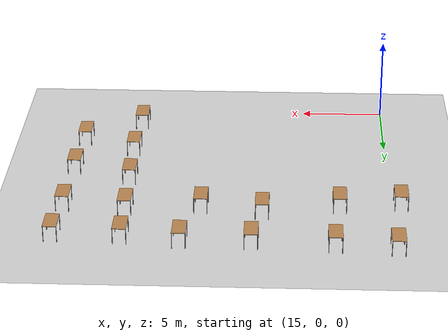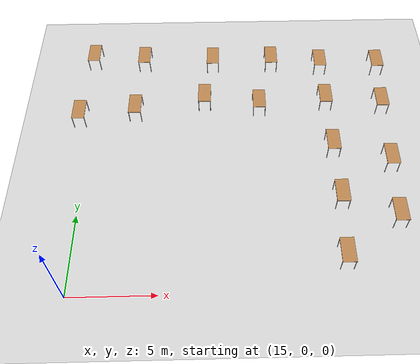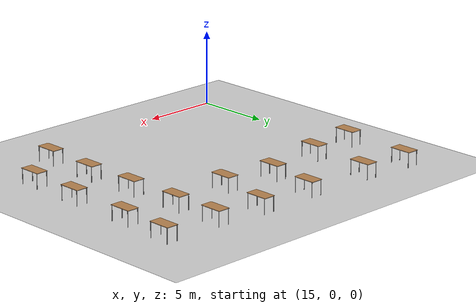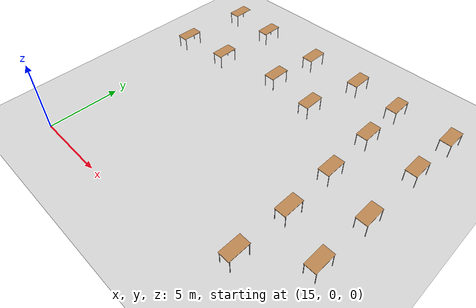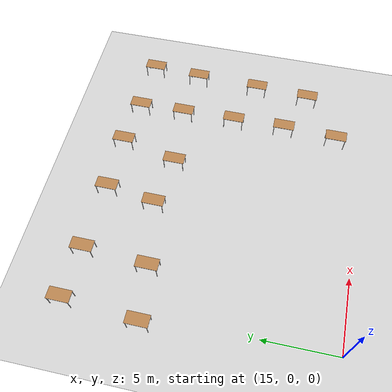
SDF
<sdf version="1.6">
 <world name="default">
  <model name="ground_plane">
   <static>1</static>
   <link name="link">
    <collision name="collision">
     <geometry><plane><normal>0 0 1</normal><size>100 100</size></plane></geometry>
     <surface>
      <contact><collide_bitmask>65535</collide_bitmask></contact>
      <friction><ode><mu>100</mu><mu2>50</mu2></ode></friction>
     </surface>
    </collision>
    <visual name="visual">
     <cast_shadows>0</cast_shadows>
     <geometry><plane><normal>0 0 1</normal><size>100 100</size></plane></geometry>
     <material>
      <script><uri>file://media/materials/scripts/gazebo.material</uri><name>Gazebo/Grey</name></script>
     </material>
    </visual>
   </link>
  </model>
  <model name="table_clone_14">
   <static>1</static>
   <link name="link">
    <collision name="surface">
     <pose>0 0 1 0 -0 0</pose>
     <geometry><box><size>1.5 0.8 0.03</size></box></geometry>
     <surface><friction><ode><mu>0.6</mu><mu2>0.6</mu2></ode></friction></surface>
    </collision>
    <visual name="visual1">
     <pose>0 0 1 0 -0 0</pose>
     <geometry><box><size>1.5 0.8 0.03</size></box></geometry>
     <material>
      <script><uri>file://media/materials/scripts/gazebo.material</uri><name>Gazebo/Wood</name></script>
     </material>
    </visual>
    <collision name="front_left_leg">
     <pose>0.68 0.38 0.5 0 -0 0</pose>
     <geometry><cylinder><radius>0.02</radius><length>1</length></cylinder></geometry>
    </collision>
    <visual name="front_left_leg">
     <pose>0.68 0.38 0.5 0 -0 0</pose>
     <geometry><cylinder><radius>0.02</radius><length>1</length></cylinder></geometry>
     <material>
      <script><uri>file://media/materials/scripts/gazebo.material</uri><name>Gazebo/Grey</name></script>
     </material>
    </visual>
    <collision name="front_right_leg">
     <pose>0.68 -0.38 0.5 0 -0 0</pose>
     <geometry><cylinder><radius>0.02</radius><length>1</length></cylinder></geometry>
    </collision>
    <visual name="front_right_leg">
     <pose>0.68 -0.38 0.5 0 -0 0</pose>
     <geometry><cylinder><radius>0.02</radius><length>1</length></cylinder></geometry>
     <material>
      <script><uri>file://media/materials/scripts/gazebo.material</uri><name>Gazebo/Grey</name></script>
     </material>
    </visual>
    <collision name="back_right_leg">
     <pose>-0.68 -0.38 0.5 0 -0 0</pose>
     <geometry><cylinder><radius>0.02</radius><length>1</length></cylinder></geometry>
    </collision>
    <visual name="back_right_leg">
     <pose>-0.68 -0.38 0.5 0 -0 0</pose>
     <geometry><cylinder><radius>0.02</radius><length>1</length></cylinder></geometry>
     <material>
      <script><uri>file://media/materials/scripts/gazebo.material</uri><name>Gazebo/Grey</name></script>
     </material>
    </visual>
    <collision name="back_left_leg">
     <pose>-0.68 0.38 0.5 0 -0 0</pose>
     <geometry><cylinder><radius>0.02</radius><length>1</length></cylinder></geometry>
    </collision>
    <visual name="back_left_leg">
     <pose>-0.68 0.38 0.5 0 -0 0</pose>
     <geometry><cylinder><radius>0.02</radius><length>1</length></cylinder></geometry>
     <material>
      <script><uri>file://media/materials/scripts/gazebo.material</uri><name>Gazebo/Grey</name></script>
     </material>
    </visual>
   </link>
   <pose>14.849 17.4344 0 0 0 -1.57678</pose>
  </model>
  <model name="table_clone_15">
   <static>1</static>
   <link name="link">
    <collision name="surface">
     <pose>0 0 1 0 -0 0</pose>
     <geometry><box><size>1.5 0.8 0.03</size></box></geometry>
     <surface><friction><ode><mu>0.6</mu><mu2>0.6</mu2></ode></friction></surface>
    </collision>
    <visual name="visual1">
     <pose>0 0 1 0 -0 0</pose>
     <geometry><box><size>1.5 0.8 0.03</size></box></geometry>
     <material>
      <script><uri>file://media/materials/scripts/gazebo.material</uri><name>Gazebo/Wood</name></script>
     </material>
    </visual>
    <collision name="front_left_leg">
     <pose>0.68 0.38 0.5 0 -0 0</pose>
     <geometry><cylinder><radius>0.02</radius><length>1</length></cylinder></geometry>
    </collision>
    <visual name="front_left_leg">
     <pose>0.68 0.38 0.5 0 -0 0</pose>
     <geometry><cylinder><radius>0.02</radius><length>1</length></cylinder></geometry>
     <material>
      <script><uri>file://media/materials/scripts/gazebo.material</uri><name>Gazebo/Grey</name></script>
     </material>
    </visual>
    <collision name="front_right_leg">
     <pose>0.68 -0.38 0.5 0 -0 0</pose>
     <geometry><cylinder><radius>0.02</radius><length>1</length></cylinder></geometry>
    </collision>
    <visual name="front_right_leg">
     <pose>0.68 -0.38 0.5 0 -0 0</pose>
     <geometry><cylinder><radius>0.02</radius><length>1</length></cylinder></geometry>
     <material>
      <script><uri>file://media/materials/scripts/gazebo.material</uri><name>Gazebo/Grey</name></script>
     </material>
    </visual>
    <collision name="back_right_leg">
     <pose>-0.68 -0.38 0.5 0 -0 0</pose>
     <geometry><cylinder><radius>0.02</radius><length>1</length></cylinder></geometry>
    </collision>
    <visual name="back_right_leg">
     <pose>-0.68 -0.38 0.5 0 -0 0</pose>
     <geometry><cylinder><radius>0.02</radius><length>1</length></cylinder></geometry>
     <material>
      <script><uri>file://media/materials/scripts/gazebo.material</uri><name>Gazebo/Grey</name></script>
     </material>
    </visual>
    <collision name="back_left_leg">
     <pose>-0.68 0.38 0.5 0 -0 0</pose>
     <geometry><cylinder><radius>0.02</radius><length>1</length></cylinder></geometry>
    </collision>
    <visual name="back_left_leg">
     <pose>-0.68 0.38 0.5 0 -0 0</pose>
     <geometry><cylinder><radius>0.02</radius><length>1</length></cylinder></geometry>
     <material>
      <script><uri>file://media/materials/scripts/gazebo.material</uri><name>Gazebo/Grey</name></script>
     </material>
    </visual>
   </link>
   <pose>14.4026 12.343 0 0 0 -1.57678</pose>
  </model>
  <model name="table_clone_16">
   <static>1</static>
   <link name="link">
    <collision name="surface">
     <pose>0 0 1 0 -0 0</pose>
     <geometry><box><size>1.5 0.8 0.03</size></box></geometry>
     <surface><friction><ode><mu>0.6</mu><mu2>0.6</mu2></ode></friction></surface>
    </collision>
    <visual name="visual1">
     <pose>0 0 1 0 -0 0</pose>
     <geometry><box><size>1.5 0.8 0.03</size></box></geometry>
     <material>
      <script><uri>file://media/materials/scripts/gazebo.material</uri><name>Gazebo/Wood</name></script>
     </material>
    </visual>
    <collision name="front_left_leg">
     <pose>0.68 0.38 0.5 0 -0 0</pose>
     <geometry><cylinder><radius>0.02</radius><length>1</length></cylinder></geometry>
    </collision>
    <visual name="front_left_leg">
     <pose>0.68 0.38 0.5 0 -0 0</pose>
     <geometry><cylinder><radius>0.02</radius><length>1</length></cylinder></geometry>
     <material>
      <script><uri>file://media/materials/scripts/gazebo.material</uri><name>Gazebo/Grey</name></script>
     </material>
    </visual>
    <collision name="front_right_leg">
     <pose>0.68 -0.38 0.5 0 -0 0</pose>
     <geometry><cylinder><radius>0.02</radius><length>1</length></cylinder></geometry>
    </collision>
    <visual name="front_right_leg">
     <pose>0.68 -0.38 0.5 0 -0 0</pose>
     <geometry><cylinder><radius>0.02</radius><length>1</length></cylinder></geometry>
     <material>
      <script><uri>file://media/materials/scripts/gazebo.material</uri><name>Gazebo/Grey</name></script>
     </material>
    </visual>
    <collision name="back_right_leg">
     <pose>-0.68 -0.38 0.5 0 -0 0</pose>
     <geometry><cylinder><radius>0.02</radius><length>1</length></cylinder></geometry>
    </collision>
    <visual name="back_right_leg">
     <pose>-0.68 -0.38 0.5 0 -0 0</pose>
     <geometry><cylinder><radius>0.02</radius><length>1</length></cylinder></geometry>
     <material>
      <script><uri>file://media/materials/scripts/gazebo.material</uri><name>Gazebo/Grey</name></script>
     </material>
    </visual>
    <collision name="back_left_leg">
     <pose>-0.68 0.38 0.5 0 -0 0</pose>
     <geometry><cylinder><radius>0.02</radius><length>1</length></cylinder></geometry>
    </collision>
    <visual name="back_left_leg">
     <pose>-0.68 0.38 0.5 0 -0 0</pose>
     <geometry><cylinder><radius>0.02</radius><length>1</length></cylinder></geometry>
     <material>
      <script><uri>file://media/materials/scripts/gazebo.material</uri><name>Gazebo/Grey</name></script>
     </material>
    </visual>
   </link>
   <pose>18.3129 17.1744 0 0 0 -1.57678</pose>
  </model>
  <model name="table_clone_17">
   <static>1</static>
   <link name="link">
    <collision name="surface">
     <pose>0 0 1 0 -0 0</pose>
     <geometry><box><size>1.5 0.8 0.03</size></box></geometry>
     <surface><friction><ode><mu>0.6</mu><mu2>0.6</mu2></ode></friction></surface>
    </collision>
    <visual name="visual1">
     <pose>0 0 1 0 -0 0</pose>
     <geometry><box><size>1.5 0.8 0.03</size></box></geometry>
     <material>
      <script><uri>file://media/materials/scripts/gazebo.material</uri><name>Gazebo/Wood</name></script>
     </material>
    </visual>
    <collision name="front_left_leg">
     <pose>0.68 0.38 0.5 0 -0 0</pose>
     <geometry><cylinder><radius>0.02</radius><length>1</length></cylinder></geometry>
    </collision>
    <visual name="front_left_leg">
     <pose>0.68 0.38 0.5 0 -0 0</pose>
     <geometry><cylinder><radius>0.02</radius><length>1</length></cylinder></geometry>
     <material>
      <script><uri>file://media/materials/scripts/gazebo.material</uri><name>Gazebo/Grey</name></script>
     </material>
    </visual>
    <collision name="front_right_leg">
     <pose>0.68 -0.38 0.5 0 -0 0</pose>
     <geometry><cylinder><radius>0.02</radius><length>1</length></cylinder></geometry>
    </collision>
    <visual name="front_right_leg">
     <pose>0.68 -0.38 0.5 0 -0 0</pose>
     <geometry><cylinder><radius>0.02</radius><length>1</length></cylinder></geometry>
     <material>
      <script><uri>file://media/materials/scripts/gazebo.material</uri><name>Gazebo/Grey</name></script>
     </material>
    </visual>
    <collision name="back_right_leg">
     <pose>-0.68 -0.38 0.5 0 -0 0</pose>
     <geometry><cylinder><radius>0.02</radius><length>1</length></cylinder></geometry>
    </collision>
    <visual name="back_right_leg">
     <pose>-0.68 -0.38 0.5 0 -0 0</pose>
     <geometry><cylinder><radius>0.02</radius><length>1</length></cylinder></geometry>
     <material>
      <script><uri>file://media/materials/scripts/gazebo.material</uri><name>Gazebo/Grey</name></script>
     </material>
    </visual>
    <collision name="back_left_leg">
     <pose>-0.68 0.38 0.5 0 -0 0</pose>
     <geometry><cylinder><radius>0.02</radius><length>1</length></cylinder></geometry>
    </collision>
    <visual name="back_left_leg">
     <pose>-0.68 0.38 0.5 0 -0 0</pose>
     <geometry><cylinder><radius>0.02</radius><length>1</length></cylinder></geometry>
     <material>
      <script><uri>file://media/materials/scripts/gazebo.material</uri><name>Gazebo/Grey</name></script>
     </material>
    </visual>
   </link>
   <pose>17.9638 12.7336 0 0 0 -1.57678</pose>
  </model>
  <model name="table_clone_7_clone">
   <static>1</static>
   <link name="link">
    <collision name="surface">
     <pose>0 0 1 0 -0 0</pose>
     <geometry><box><size>1.5 0.8 0.03</size></box></geometry>
     <surface><friction><ode><mu>0.6</mu><mu2>0.6</mu2></ode></friction></surface>
    </collision>
    <visual name="visual1">
     <pose>0 0 1 0 -0 0</pose>
     <geometry><box><size>1.5 0.8 0.03</size></box></geometry>
     <material>
      <script><uri>file://media/materials/scripts/gazebo.material</uri><name>Gazebo/Wood</name></script>
     </material>
    </visual>
    <collision name="front_left_leg">
     <pose>0.68 0.38 0.5 0 -0 0</pose>
     <geometry><cylinder><radius>0.02</radius><length>1</length></cylinder></geometry>
    </collision>
    <visual name="front_left_leg">
     <pose>0.68 0.38 0.5 0 -0 0</pose>
     <geometry><cylinder><radius>0.02</radius><length>1</length></cylinder></geometry>
     <material>
      <script><uri>file://media/materials/scripts/gazebo.material</uri><name>Gazebo/Grey</name></script>
     </material>
    </visual>
    <collision name="front_right_leg">
     <pose>0.68 -0.38 0.5 0 -0 0</pose>
     <geometry><cylinder><radius>0.02</radius><length>1</length></cylinder></geometry>
    </collision>
    <visual name="front_right_leg">
     <pose>0.68 -0.38 0.5 0 -0 0</pose>
     <geometry><cylinder><radius>0.02</radius><length>1</length></cylinder></geometry>
     <material>
      <script><uri>file://media/materials/scripts/gazebo.material</uri><name>Gazebo/Grey</name></script>
     </material>
    </visual>
    <collision name="back_right_leg">
     <pose>-0.68 -0.38 0.5 0 -0 0</pose>
     <geometry><cylinder><radius>0.02</radius><length>1</length></cylinder></geometry>
    </collision>
    <visual name="back_right_leg">
     <pose>-0.68 -0.38 0.5 0 -0 0</pose>
     <geometry><cylinder><radius>0.02</radius><length>1</length></cylinder></geometry>
     <material>
      <script><uri>file://media/materials/scripts/gazebo.material</uri><name>Gazebo/Grey</name></script>
     </material>
    </visual>
    <collision name="back_left_leg">
     <pose>-0.68 0.38 0.5 0 -0 0</pose>
     <geometry><cylinder><radius>0.02</radius><length>1</length></cylinder></geometry>
    </collision>
    <visual name="back_left_leg">
     <pose>-0.68 0.38 0.5 0 -0 0</pose>
     <geometry><cylinder><radius>0.02</radius><length>1</length></cylinder></geometry>
     <material>
      <script><uri>file://media/materials/scripts/gazebo.material</uri><name>Gazebo/Grey</name></script>
     </material>
    </visual>
   </link>
   <pose>34.2144 16.5177 0 0 0 -1.57678</pose>
  </model>
  <model name="table_clone_7_clone_0">
   <static>1</static>
   <link name="link">
    <collision name="surface">
     <pose>0 0 1 0 -0 0</pose>
     <geometry><box><size>1.5 0.8 0.03</size></box></geometry>
     <surface><friction><ode><mu>0.6</mu><mu2>0.6</mu2></ode></friction></surface>
    </collision>
    <visual name="visual1">
     <pose>0 0 1 0 -0 0</pose>
     <geometry><box><size>1.5 0.8 0.03</size></box></geometry>
     <material>
      <script><uri>file://media/materials/scripts/gazebo.material</uri><name>Gazebo/Wood</name></script>
     </material>
    </visual>
    <collision name="front_left_leg">
     <pose>0.68 0.38 0.5 0 -0 0</pose>
     <geometry><cylinder><radius>0.02</radius><length>1</length></cylinder></geometry>
    </collision>
    <visual name="front_left_leg">
     <pose>0.68 0.38 0.5 0 -0 0</pose>
     <geometry><cylinder><radius>0.02</radius><length>1</length></cylinder></geometry>
     <material>
      <script><uri>file://media/materials/scripts/gazebo.material</uri><name>Gazebo/Grey</name></script>
     </material>
    </visual>
    <collision name="front_right_leg">
     <pose>0.68 -0.38 0.5 0 -0 0</pose>
     <geometry><cylinder><radius>0.02</radius><length>1</length></cylinder></geometry>
    </collision>
    <visual name="front_right_leg">
     <pose>0.68 -0.38 0.5 0 -0 0</pose>
     <geometry><cylinder><radius>0.02</radius><length>1</length></cylinder></geometry>
     <material>
      <script><uri>file://media/materials/scripts/gazebo.material</uri><name>Gazebo/Grey</name></script>
     </material>
    </visual>
    <collision name="back_right_leg">
     <pose>-0.68 -0.38 0.5 0 -0 0</pose>
     <geometry><cylinder><radius>0.02</radius><length>1</length></cylinder></geometry>
    </collision>
    <visual name="back_right_leg">
     <pose>-0.68 -0.38 0.5 0 -0 0</pose>
     <geometry><cylinder><radius>0.02</radius><length>1</length></cylinder></geometry>
     <material>
      <script><uri>file://media/materials/scripts/gazebo.material</uri><name>Gazebo/Grey</name></script>
     </material>
    </visual>
    <collision name="back_left_leg">
     <pose>-0.68 0.38 0.5 0 -0 0</pose>
     <geometry><cylinder><radius>0.02</radius><length>1</length></cylinder></geometry>
    </collision>
    <visual name="back_left_leg">
     <pose>-0.68 0.38 0.5 0 -0 0</pose>
     <geometry><cylinder><radius>0.02</radius><length>1</length></cylinder></geometry>
     <material>
      <script><uri>file://media/materials/scripts/gazebo.material</uri><name>Gazebo/Grey</name></script>
     </material>
    </visual>
   </link>
   <pose>34 13 0 0 0 -1.57678</pose>
  </model>
  <model name="table_clone_7_clone_1">
   <static>1</static>
   <link name="link">
    <collision name="surface">
     <pose>0 0 1 0 -0 0</pose>
     <geometry><box><size>1.5 0.8 0.03</size></box></geometry>
     <surface><friction><ode><mu>0.6</mu><mu2>0.6</mu2></ode></friction></surface>
    </collision>
    <visual name="visual1">
     <pose>0 0 1 0 -0 0</pose>
     <geometry><box><size>1.5 0.8 0.03</size></box></geometry>
     <material>
      <script><uri>file://media/materials/scripts/gazebo.material</uri><name>Gazebo/Wood</name></script>
     </material>
    </visual>
    <collision name="front_left_leg">
     <pose>0.68 0.38 0.5 0 -0 0</pose>
     <geometry><cylinder><radius>0.02</radius><length>1</length></cylinder></geometry>
    </collision>
    <visual name="front_left_leg">
     <pose>0.68 0.38 0.5 0 -0 0</pose>
     <geometry><cylinder><radius>0.02</radius><length>1</length></cylinder></geometry>
     <material>
      <script><uri>file://media/materials/scripts/gazebo.material</uri><name>Gazebo/Grey</name></script>
     </material>
    </visual>
    <collision name="front_right_leg">
     <pose>0.68 -0.38 0.5 0 -0 0</pose>
     <geometry><cylinder><radius>0.02</radius><length>1</length></cylinder></geometry>
    </collision>
    <visual name="front_right_leg">
     <pose>0.68 -0.38 0.5 0 -0 0</pose>
     <geometry><cylinder><radius>0.02</radius><length>1</length></cylinder></geometry>
     <material>
      <script><uri>file://media/materials/scripts/gazebo.material</uri><name>Gazebo/Grey</name></script>
     </material>
    </visual>
    <collision name="back_right_leg">
     <pose>-0.68 -0.38 0.5 0 -0 0</pose>
     <geometry><cylinder><radius>0.02</radius><length>1</length></cylinder></geometry>
    </collision>
    <visual name="back_right_leg">
     <pose>-0.68 -0.38 0.5 0 -0 0</pose>
     <geometry><cylinder><radius>0.02</radius><length>1</length></cylinder></geometry>
     <material>
      <script><uri>file://media/materials/scripts/gazebo.material</uri><name>Gazebo/Grey</name></script>
     </material>
    </visual>
    <collision name="back_left_leg">
     <pose>-0.68 0.38 0.5 0 -0 0</pose>
     <geometry><cylinder><radius>0.02</radius><length>1</length></cylinder></geometry>
    </collision>
    <visual name="back_left_leg">
     <pose>-0.68 0.38 0.5 0 -0 0</pose>
     <geometry><cylinder><radius>0.02</radius><length>1</length></cylinder></geometry>
     <material>
      <script><uri>file://media/materials/scripts/gazebo.material</uri><name>Gazebo/Grey</name></script>
     </material>
    </visual>
   </link>
   <pose>33.8681 8.3888 0 0 0 -1.57678</pose>
  </model>
  <model name="table_clone_7_clone_2">
   <static>1</static>
   <link name="link">
    <collision name="surface">
     <pose>0 0 1 0 -0 0</pose>
     <geometry><box><size>1.5 0.8 0.03</size></box></geometry>
     <surface><friction><ode><mu>0.6</mu><mu2>0.6</mu2></ode></friction></surface>
    </collision>
    <visual name="visual1">
     <pose>0 0 1 0 -0 0</pose>
     <geometry><box><size>1.5 0.8 0.03</size></box></geometry>
     <material>
      <script><uri>file://media/materials/scripts/gazebo.material</uri><name>Gazebo/Wood</name></script>
     </material>
    </visual>
    <collision name="front_left_leg">
     <pose>0.68 0.38 0.5 0 -0 0</pose>
     <geometry><cylinder><radius>0.02</radius><length>1</length></cylinder></geometry>
    </collision>
    <visual name="front_left_leg">
     <pose>0.68 0.38 0.5 0 -0 0</pose>
     <geometry><cylinder><radius>0.02</radius><length>1</length></cylinder></geometry>
     <material>
      <script><uri>file://media/materials/scripts/gazebo.material</uri><name>Gazebo/Grey</name></script>
     </material>
    </visual>
    <collision name="front_right_leg">
     <pose>0.68 -0.38 0.5 0 -0 0</pose>
     <geometry><cylinder><radius>0.02</radius><length>1</length></cylinder></geometry>
    </collision>
    <visual name="front_right_leg">
     <pose>0.68 -0.38 0.5 0 -0 0</pose>
     <geometry><cylinder><radius>0.02</radius><length>1</length></cylinder></geometry>
     <material>
      <script><uri>file://media/materials/scripts/gazebo.material</uri><name>Gazebo/Grey</name></script>
     </material>
    </visual>
    <collision name="back_right_leg">
     <pose>-0.68 -0.38 0.5 0 -0 0</pose>
     <geometry><cylinder><radius>0.02</radius><length>1</length></cylinder></geometry>
    </collision>
    <visual name="back_right_leg">
     <pose>-0.68 -0.38 0.5 0 -0 0</pose>
     <geometry><cylinder><radius>0.02</radius><length>1</length></cylinder></geometry>
     <material>
      <script><uri>file://media/materials/scripts/gazebo.material</uri><name>Gazebo/Grey</name></script>
     </material>
    </visual>
    <collision name="back_left_leg">
     <pose>-0.68 0.38 0.5 0 -0 0</pose>
     <geometry><cylinder><radius>0.02</radius><length>1</length></cylinder></geometry>
    </collision>
    <visual name="back_left_leg">
     <pose>-0.68 0.38 0.5 0 -0 0</pose>
     <geometry><cylinder><radius>0.02</radius><length>1</length></cylinder></geometry>
     <material>
      <script><uri>file://media/materials/scripts/gazebo.material</uri><name>Gazebo/Grey</name></script>
     </material>
    </visual>
   </link>
   <pose>33.6634 4.48857 0 0 0 -1.57678</pose>
  </model>
  <model name="table_clone_7_clone_7">
   <static>1</static>
   <link name="link">
    <collision name="surface">
     <pose>0 0 1 0 -0 0</pose>
     <geometry><box><size>1.5 0.8 0.03</size></box></geometry>
     <surface><friction><ode><mu>0.6</mu><mu2>0.6</mu2></ode></friction></surface>
    </collision>
    <visual name="visual1">
     <pose>0 0 1 0 -0 0</pose>
     <geometry><box><size>1.5 0.8 0.03</size></box></geometry>
     <material>
      <script><uri>file://media/materials/scripts/gazebo.material</uri><name>Gazebo/Wood</name></script>
     </material>
    </visual>
    <collision name="front_left_leg">
     <pose>0.68 0.38 0.5 0 -0 0</pose>
     <geometry><cylinder><radius>0.02</radius><length>1</length></cylinder></geometry>
    </collision>
    <visual name="front_left_leg">
     <pose>0.68 0.38 0.5 0 -0 0</pose>
     <geometry><cylinder><radius>0.02</radius><length>1</length></cylinder></geometry>
     <material>
      <script><uri>file://media/materials/scripts/gazebo.material</uri><name>Gazebo/Grey</name></script>
     </material>
    </visual>
    <collision name="front_right_leg">
     <pose>0.68 -0.38 0.5 0 -0 0</pose>
     <geometry><cylinder><radius>0.02</radius><length>1</length></cylinder></geometry>
    </collision>
    <visual name="front_right_leg">
     <pose>0.68 -0.38 0.5 0 -0 0</pose>
     <geometry><cylinder><radius>0.02</radius><length>1</length></cylinder></geometry>
     <material>
      <script><uri>file://media/materials/scripts/gazebo.material</uri><name>Gazebo/Grey</name></script>
     </material>
    </visual>
    <collision name="back_right_leg">
     <pose>-0.68 -0.38 0.5 0 -0 0</pose>
     <geometry><cylinder><radius>0.02</radius><length>1</length></cylinder></geometry>
    </collision>
    <visual name="back_right_leg">
     <pose>-0.68 -0.38 0.5 0 -0 0</pose>
     <geometry><cylinder><radius>0.02</radius><length>1</length></cylinder></geometry>
     <material>
      <script><uri>file://media/materials/scripts/gazebo.material</uri><name>Gazebo/Grey</name></script>
     </material>
    </visual>
    <collision name="back_left_leg">
     <pose>-0.68 0.38 0.5 0 -0 0</pose>
     <geometry><cylinder><radius>0.02</radius><length>1</length></cylinder></geometry>
    </collision>
    <visual name="back_left_leg">
     <pose>-0.68 0.38 0.5 0 -0 0</pose>
     <geometry><cylinder><radius>0.02</radius><length>1</length></cylinder></geometry>
     <material>
      <script><uri>file://media/materials/scripts/gazebo.material</uri><name>Gazebo/Grey</name></script>
     </material>
    </visual>
   </link>
   <pose>30.3277 16.6443 0 0 0 -1.57678</pose>
  </model>
  <model name="table_clone_7_clone_8">
   <static>1</static>
   <link name="link">
    <collision name="surface">
     <pose>0 0 1 0 -0 0</pose>
     <geometry><box><size>1.5 0.8 0.03</size></box></geometry>
     <surface><friction><ode><mu>0.6</mu><mu2>0.6</mu2></ode></friction></surface>
    </collision>
    <visual name="visual1">
     <pose>0 0 1 0 -0 0</pose>
     <geometry><box><size>1.5 0.8 0.03</size></box></geometry>
     <material>
      <script><uri>file://media/materials/scripts/gazebo.material</uri><name>Gazebo/Wood</name></script>
     </material>
    </visual>
    <collision name="front_left_leg">
     <pose>0.68 0.38 0.5 0 -0 0</pose>
     <geometry><cylinder><radius>0.02</radius><length>1</length></cylinder></geometry>
    </collision>
    <visual name="front_left_leg">
     <pose>0.68 0.38 0.5 0 -0 0</pose>
     <geometry><cylinder><radius>0.02</radius><length>1</length></cylinder></geometry>
     <material>
      <script><uri>file://media/materials/scripts/gazebo.material</uri><name>Gazebo/Grey</name></script>
     </material>
    </visual>
    <collision name="front_right_leg">
     <pose>0.68 -0.38 0.5 0 -0 0</pose>
     <geometry><cylinder><radius>0.02</radius><length>1</length></cylinder></geometry>
    </collision>
    <visual name="front_right_leg">
     <pose>0.68 -0.38 0.5 0 -0 0</pose>
     <geometry><cylinder><radius>0.02</radius><length>1</length></cylinder></geometry>
     <material>
      <script><uri>file://media/materials/scripts/gazebo.material</uri><name>Gazebo/Grey</name></script>
     </material>
    </visual>
    <collision name="back_right_leg">
     <pose>-0.68 -0.38 0.5 0 -0 0</pose>
     <geometry><cylinder><radius>0.02</radius><length>1</length></cylinder></geometry>
    </collision>
    <visual name="back_right_leg">
     <pose>-0.68 -0.38 0.5 0 -0 0</pose>
     <geometry><cylinder><radius>0.02</radius><length>1</length></cylinder></geometry>
     <material>
      <script><uri>file://media/materials/scripts/gazebo.material</uri><name>Gazebo/Grey</name></script>
     </material>
    </visual>
    <collision name="back_left_leg">
     <pose>-0.68 0.38 0.5 0 -0 0</pose>
     <geometry><cylinder><radius>0.02</radius><length>1</length></cylinder></geometry>
    </collision>
    <visual name="back_left_leg">
     <pose>-0.68 0.38 0.5 0 -0 0</pose>
     <geometry><cylinder><radius>0.02</radius><length>1</length></cylinder></geometry>
     <material>
      <script><uri>file://media/materials/scripts/gazebo.material</uri><name>Gazebo/Grey</name></script>
     </material>
    </visual>
   </link>
   <pose>30.3629 13.3744 0 0 0 -1.57678</pose>
  </model>
  <model name="table_clone_7_clone_9">
   <static>1</static>
   <link name="link">
    <collision name="surface">
     <pose>0 0 1 0 -0 0</pose>
     <geometry><box><size>1.5 0.8 0.03</size></box></geometry>
     <surface><friction><ode><mu>0.6</mu><mu2>0.6</mu2></ode></friction></surface>
    </collision>
    <visual name="visual1">
     <pose>0 0 1 0 -0 0</pose>
     <geometry><box><size>1.5 0.8 0.03</size></box></geometry>
     <material>
      <script><uri>file://media/materials/scripts/gazebo.material</uri><name>Gazebo/Wood</name></script>
     </material>
    </visual>
    <collision name="front_left_leg">
     <pose>0.68 0.38 0.5 0 -0 0</pose>
     <geometry><cylinder><radius>0.02</radius><length>1</length></cylinder></geometry>
    </collision>
    <visual name="front_left_leg">
     <pose>0.68 0.38 0.5 0 -0 0</pose>
     <geometry><cylinder><radius>0.02</radius><length>1</length></cylinder></geometry>
     <material>
      <script><uri>file://media/materials/scripts/gazebo.material</uri><name>Gazebo/Grey</name></script>
     </material>
    </visual>
    <collision name="front_right_leg">
     <pose>0.68 -0.38 0.5 0 -0 0</pose>
     <geometry><cylinder><radius>0.02</radius><length>1</length></cylinder></geometry>
    </collision>
    <visual name="front_right_leg">
     <pose>0.68 -0.38 0.5 0 -0 0</pose>
     <geometry><cylinder><radius>0.02</radius><length>1</length></cylinder></geometry>
     <material>
      <script><uri>file://media/materials/scripts/gazebo.material</uri><name>Gazebo/Grey</name></script>
     </material>
    </visual>
    <collision name="back_right_leg">
     <pose>-0.68 -0.38 0.5 0 -0 0</pose>
     <geometry><cylinder><radius>0.02</radius><length>1</length></cylinder></geometry>
    </collision>
    <visual name="back_right_leg">
     <pose>-0.68 -0.38 0.5 0 -0 0</pose>
     <geometry><cylinder><radius>0.02</radius><length>1</length></cylinder></geometry>
     <material>
      <script><uri>file://media/materials/scripts/gazebo.material</uri><name>Gazebo/Grey</name></script>
     </material>
    </visual>
    <collision name="back_left_leg">
     <pose>-0.68 0.38 0.5 0 -0 0</pose>
     <geometry><cylinder><radius>0.02</radius><length>1</length></cylinder></geometry>
    </collision>
    <visual name="back_left_leg">
     <pose>-0.68 0.38 0.5 0 -0 0</pose>
     <geometry><cylinder><radius>0.02</radius><length>1</length></cylinder></geometry>
     <material>
      <script><uri>file://media/materials/scripts/gazebo.material</uri><name>Gazebo/Grey</name></script>
     </material>
    </visual>
   </link>
   <pose>30.4405 9.56138 0 0 0 -1.57678</pose>
  </model>
  <model name="table_clone_7_clone_10">
   <static>1</static>
   <link name="link">
    <collision name="surface">
     <pose>0 0 1 0 -0 0</pose>
     <geometry><box><size>1.5 0.8 0.03</size></box></geometry>
     <surface><friction><ode><mu>0.6</mu><mu2>0.6</mu2></ode></friction></surface>
    </collision>
    <visual name="visual1">
     <pose>0 0 1 0 -0 0</pose>
     <geometry><box><size>1.5 0.8 0.03</size></box></geometry>
     <material>
      <script><uri>file://media/materials/scripts/gazebo.material</uri><name>Gazebo/Wood</name></script>
     </material>
    </visual>
    <collision name="front_left_leg">
     <pose>0.68 0.38 0.5 0 -0 0</pose>
     <geometry><cylinder><radius>0.02</radius><length>1</length></cylinder></geometry>
    </collision>
    <visual name="front_left_leg">
     <pose>0.68 0.38 0.5 0 -0 0</pose>
     <geometry><cylinder><radius>0.02</radius><length>1</length></cylinder></geometry>
     <material>
      <script><uri>file://media/materials/scripts/gazebo.material</uri><name>Gazebo/Grey</name></script>
     </material>
    </visual>
    <collision name="front_right_leg">
     <pose>0.68 -0.38 0.5 0 -0 0</pose>
     <geometry><cylinder><radius>0.02</radius><length>1</length></cylinder></geometry>
    </collision>
    <visual name="front_right_leg">
     <pose>0.68 -0.38 0.5 0 -0 0</pose>
     <geometry><cylinder><radius>0.02</radius><length>1</length></cylinder></geometry>
     <material>
      <script><uri>file://media/materials/scripts/gazebo.material</uri><name>Gazebo/Grey</name></script>
     </material>
    </visual>
    <collision name="back_right_leg">
     <pose>-0.68 -0.38 0.5 0 -0 0</pose>
     <geometry><cylinder><radius>0.02</radius><length>1</length></cylinder></geometry>
    </collision>
    <visual name="back_right_leg">
     <pose>-0.68 -0.38 0.5 0 -0 0</pose>
     <geometry><cylinder><radius>0.02</radius><length>1</length></cylinder></geometry>
     <material>
      <script><uri>file://media/materials/scripts/gazebo.material</uri><name>Gazebo/Grey</name></script>
     </material>
    </visual>
    <collision name="back_left_leg">
     <pose>-0.68 0.38 0.5 0 -0 0</pose>
     <geometry><cylinder><radius>0.02</radius><length>1</length></cylinder></geometry>
    </collision>
    <visual name="back_left_leg">
     <pose>-0.68 0.38 0.5 0 -0 0</pose>
     <geometry><cylinder><radius>0.02</radius><length>1</length></cylinder></geometry>
     <material>
      <script><uri>file://media/materials/scripts/gazebo.material</uri><name>Gazebo/Grey</name></script>
     </material>
    </visual>
   </link>
   <pose>30.5129 5.82378 0 0 0 -1.57678</pose>
  </model>
  <model name="table_clone_7_clone_11">
   <static>1</static>
   <link name="link">
    <collision name="surface">
     <pose>0 0 1 0 -0 0</pose>
     <geometry><box><size>1.5 0.8 0.03</size></box></geometry>
     <surface><friction><ode><mu>0.6</mu><mu2>0.6</mu2></ode></friction></surface>
    </collision>
    <visual name="visual1">
     <pose>0 0 1 0 -0 0</pose>
     <geometry><box><size>1.5 0.8 0.03</size></box></geometry>
     <material>
      <script><uri>file://media/materials/scripts/gazebo.material</uri><name>Gazebo/Wood</name></script>
     </material>
    </visual>
    <collision name="front_left_leg">
     <pose>0.68 0.38 0.5 0 -0 0</pose>
     <geometry><cylinder><radius>0.02</radius><length>1</length></cylinder></geometry>
    </collision>
    <visual name="front_left_leg">
     <pose>0.68 0.38 0.5 0 -0 0</pose>
     <geometry><cylinder><radius>0.02</radius><length>1</length></cylinder></geometry>
     <material>
      <script><uri>file://media/materials/scripts/gazebo.material</uri><name>Gazebo/Grey</name></script>
     </material>
    </visual>
    <collision name="front_right_leg">
     <pose>0.68 -0.38 0.5 0 -0 0</pose>
     <geometry><cylinder><radius>0.02</radius><length>1</length></cylinder></geometry>
    </collision>
    <visual name="front_right_leg">
     <pose>0.68 -0.38 0.5 0 -0 0</pose>
     <geometry><cylinder><radius>0.02</radius><length>1</length></cylinder></geometry>
     <material>
      <script><uri>file://media/materials/scripts/gazebo.material</uri><name>Gazebo/Grey</name></script>
     </material>
    </visual>
    <collision name="back_right_leg">
     <pose>-0.68 -0.38 0.5 0 -0 0</pose>
     <geometry><cylinder><radius>0.02</radius><length>1</length></cylinder></geometry>
    </collision>
    <visual name="back_right_leg">
     <pose>-0.68 -0.38 0.5 0 -0 0</pose>
     <geometry><cylinder><radius>0.02</radius><length>1</length></cylinder></geometry>
     <material>
      <script><uri>file://media/materials/scripts/gazebo.material</uri><name>Gazebo/Grey</name></script>
     </material>
    </visual>
    <collision name="back_left_leg">
     <pose>-0.68 0.38 0.5 0 -0 0</pose>
     <geometry><cylinder><radius>0.02</radius><length>1</length></cylinder></geometry>
    </collision>
    <visual name="back_left_leg">
     <pose>-0.68 0.38 0.5 0 -0 0</pose>
     <geometry><cylinder><radius>0.02</radius><length>1</length></cylinder></geometry>
     <material>
      <script><uri>file://media/materials/scripts/gazebo.material</uri><name>Gazebo/Grey</name></script>
     </material>
    </visual>
   </link>
   <pose>30.3081 1.99436 0 0 0 -1.57678</pose>
  </model>
  <model name="table_clone_7_clone_18">
   <static>1</static>
   <link name="link">
    <collision name="surface">
     <pose>0 0 1 0 -0 0</pose>
     <geometry><box><size>1.5 0.8 0.03</size></box></geometry>
     <surface><friction><ode><mu>0.6</mu><mu2>0.6</mu2></ode></friction></surface>
    </collision>
    <visual name="visual1">
     <pose>0 0 1 0 -0 0</pose>
     <geometry><box><size>1.5 0.8 0.03</size></box></geometry>
     <material>
      <script><uri>file://media/materials/scripts/gazebo.material</uri><name>Gazebo/Wood</name></script>
     </material>
    </visual>
    <collision name="front_left_leg">
     <pose>0.68 0.38 0.5 0 -0 0</pose>
     <geometry><cylinder><radius>0.02</radius><length>1</length></cylinder></geometry>
    </collision>
    <visual name="front_left_leg">
     <pose>0.68 0.38 0.5 0 -0 0</pose>
     <geometry><cylinder><radius>0.02</radius><length>1</length></cylinder></geometry>
     <material>
      <script><uri>file://media/materials/scripts/gazebo.material</uri><name>Gazebo/Grey</name></script>
     </material>
    </visual>
    <collision name="front_right_leg">
     <pose>0.68 -0.38 0.5 0 -0 0</pose>
     <geometry><cylinder><radius>0.02</radius><length>1</length></cylinder></geometry>
    </collision>
    <visual name="front_right_leg">
     <pose>0.68 -0.38 0.5 0 -0 0</pose>
     <geometry><cylinder><radius>0.02</radius><length>1</length></cylinder></geometry>
     <material>
      <script><uri>file://media/materials/scripts/gazebo.material</uri><name>Gazebo/Grey</name></script>
     </material>
    </visual>
    <collision name="back_right_leg">
     <pose>-0.68 -0.38 0.5 0 -0 0</pose>
     <geometry><cylinder><radius>0.02</radius><length>1</length></cylinder></geometry>
    </collision>
    <visual name="back_right_leg">
     <pose>-0.68 -0.38 0.5 0 -0 0</pose>
     <geometry><cylinder><radius>0.02</radius><length>1</length></cylinder></geometry>
     <material>
      <script><uri>file://media/materials/scripts/gazebo.material</uri><name>Gazebo/Grey</name></script>
     </material>
    </visual>
    <collision name="back_left_leg">
     <pose>-0.68 0.38 0.5 0 -0 0</pose>
     <geometry><cylinder><radius>0.02</radius><length>1</length></cylinder></geometry>
    </collision>
    <visual name="back_left_leg">
     <pose>-0.68 0.38 0.5 0 -0 0</pose>
     <geometry><cylinder><radius>0.02</radius><length>1</length></cylinder></geometry>
     <material>
      <script><uri>file://media/materials/scripts/gazebo.material</uri><name>Gazebo/Grey</name></script>
     </material>
    </visual>
   </link>
   <pose>27 17 0 0 0 -1.57678</pose>
  </model>
  <model name="table_clone_7_clone_19">
   <static>1</static>
   <link name="link">
    <collision name="surface">
     <pose>0 0 1 0 -0 0</pose>
     <geometry><box><size>1.5 0.8 0.03</size></box></geometry>
     <surface><friction><ode><mu>0.6</mu><mu2>0.6</mu2></ode></friction></surface>
    </collision>
    <visual name="visual1">
     <pose>0 0 1 0 -0 0</pose>
     <geometry><box><size>1.5 0.8 0.03</size></box></geometry>
     <material>
      <script><uri>file://media/materials/scripts/gazebo.material</uri><name>Gazebo/Wood</name></script>
     </material>
    </visual>
    <collision name="front_left_leg">
     <pose>0.68 0.38 0.5 0 -0 0</pose>
     <geometry><cylinder><radius>0.02</radius><length>1</length></cylinder></geometry>
    </collision>
    <visual name="front_left_leg">
     <pose>0.68 0.38 0.5 0 -0 0</pose>
     <geometry><cylinder><radius>0.02</radius><length>1</length></cylinder></geometry>
     <material>
      <script><uri>file://media/materials/scripts/gazebo.material</uri><name>Gazebo/Grey</name></script>
     </material>
    </visual>
    <collision name="front_right_leg">
     <pose>0.68 -0.38 0.5 0 -0 0</pose>
     <geometry><cylinder><radius>0.02</radius><length>1</length></cylinder></geometry>
    </collision>
    <visual name="front_right_leg">
     <pose>0.68 -0.38 0.5 0 -0 0</pose>
     <geometry><cylinder><radius>0.02</radius><length>1</length></cylinder></geometry>
     <material>
      <script><uri>file://media/materials/scripts/gazebo.material</uri><name>Gazebo/Grey</name></script>
     </material>
    </visual>
    <collision name="back_right_leg">
     <pose>-0.68 -0.38 0.5 0 -0 0</pose>
     <geometry><cylinder><radius>0.02</radius><length>1</length></cylinder></geometry>
    </collision>
    <visual name="back_right_leg">
     <pose>-0.68 -0.38 0.5 0 -0 0</pose>
     <geometry><cylinder><radius>0.02</radius><length>1</length></cylinder></geometry>
     <material>
      <script><uri>file://media/materials/scripts/gazebo.material</uri><name>Gazebo/Grey</name></script>
     </material>
    </visual>
    <collision name="back_left_leg">
     <pose>-0.68 0.38 0.5 0 -0 0</pose>
     <geometry><cylinder><radius>0.02</radius><length>1</length></cylinder></geometry>
    </collision>
    <visual name="back_left_leg">
     <pose>-0.68 0.38 0.5 0 -0 0</pose>
     <geometry><cylinder><radius>0.02</radius><length>1</length></cylinder></geometry>
     <material>
      <script><uri>file://media/materials/scripts/gazebo.material</uri><name>Gazebo/Grey</name></script>
     </material>
    </visual>
   </link>
   <pose>23 17 0 0 0 -1.57678</pose>
  </model>
  <model name="table_clone_7_clone_20">
   <static>1</static>
   <link name="link">
    <collision name="surface">
     <pose>0 0 1 0 -0 0</pose>
     <geometry><box><size>1.5 0.8 0.03</size></box></geometry>
     <surface><friction><ode><mu>0.6</mu><mu2>0.6</mu2></ode></friction></surface>
    </collision>
    <visual name="visual1">
     <pose>0 0 1 0 -0 0</pose>
     <geometry><box><size>1.5 0.8 0.03</size></box></geometry>
     <material>
      <script><uri>file://media/materials/scripts/gazebo.material</uri><name>Gazebo/Wood</name></script>
     </material>
    </visual>
    <collision name="front_left_leg">
     <pose>0.68 0.38 0.5 0 -0 0</pose>
     <geometry><cylinder><radius>0.02</radius><length>1</length></cylinder></geometry>
    </collision>
    <visual name="front_left_leg">
     <pose>0.68 0.38 0.5 0 -0 0</pose>
     <geometry><cylinder><radius>0.02</radius><length>1</length></cylinder></geometry>
     <material>
      <script><uri>file://media/materials/scripts/gazebo.material</uri><name>Gazebo/Grey</name></script>
     </material>
    </visual>
    <collision name="front_right_leg">
     <pose>0.68 -0.38 0.5 0 -0 0</pose>
     <geometry><cylinder><radius>0.02</radius><length>1</length></cylinder></geometry>
    </collision>
    <visual name="front_right_leg">
     <pose>0.68 -0.38 0.5 0 -0 0</pose>
     <geometry><cylinder><radius>0.02</radius><length>1</length></cylinder></geometry>
     <material>
      <script><uri>file://media/materials/scripts/gazebo.material</uri><name>Gazebo/Grey</name></script>
     </material>
    </visual>
    <collision name="back_right_leg">
     <pose>-0.68 -0.38 0.5 0 -0 0</pose>
     <geometry><cylinder><radius>0.02</radius><length>1</length></cylinder></geometry>
    </collision>
    <visual name="back_right_leg">
     <pose>-0.68 -0.38 0.5 0 -0 0</pose>
     <geometry><cylinder><radius>0.02</radius><length>1</length></cylinder></geometry>
     <material>
      <script><uri>file://media/materials/scripts/gazebo.material</uri><name>Gazebo/Grey</name></script>
     </material>
    </visual>
    <collision name="back_left_leg">
     <pose>-0.68 0.38 0.5 0 -0 0</pose>
     <geometry><cylinder><radius>0.02</radius><length>1</length></cylinder></geometry>
    </collision>
    <visual name="back_left_leg">
     <pose>-0.68 0.38 0.5 0 -0 0</pose>
     <geometry><cylinder><radius>0.02</radius><length>1</length></cylinder></geometry>
     <material>
      <script><uri>file://media/materials/scripts/gazebo.material</uri><name>Gazebo/Grey</name></script>
     </material>
    </visual>
   </link>
   <pose>26 13 0 0 0 -1.57678</pose>
  </model>
  <model name="table_clone_7_clone_21">
   <static>1</static>
   <link name="link">
    <collision name="surface">
     <pose>0 0 1 0 -0 0</pose>
     <geometry><box><size>1.5 0.8 0.03</size></box></geometry>
     <surface><friction><ode><mu>0.6</mu><mu2>0.6</mu2></ode></friction></surface>
    </collision>
    <visual name="visual1">
     <pose>0 0 1 0 -0 0</pose>
     <geometry><box><size>1.5 0.8 0.03</size></box></geometry>
     <material>
      <script><uri>file://media/materials/scripts/gazebo.material</uri><name>Gazebo/Wood</name></script>
     </material>
    </visual>
    <collision name="front_left_leg">
     <pose>0.68 0.38 0.5 0 -0 0</pose>
     <geometry><cylinder><radius>0.02</radius><length>1</length></cylinder></geometry>
    </collision>
    <visual name="front_left_leg">
     <pose>0.68 0.38 0.5 0 -0 0</pose>
     <geometry><cylinder><radius>0.02</radius><length>1</length></cylinder></geometry>
     <material>
      <script><uri>file://media/materials/scripts/gazebo.material</uri><name>Gazebo/Grey</name></script>
     </material>
    </visual>
    <collision name="front_right_leg">
     <pose>0.68 -0.38 0.5 0 -0 0</pose>
     <geometry><cylinder><radius>0.02</radius><length>1</length></cylinder></geometry>
    </collision>
    <visual name="front_right_leg">
     <pose>0.68 -0.38 0.5 0 -0 0</pose>
     <geometry><cylinder><radius>0.02</radius><length>1</length></cylinder></geometry>
     <material>
      <script><uri>file://media/materials/scripts/gazebo.material</uri><name>Gazebo/Grey</name></script>
     </material>
    </visual>
    <collision name="back_right_leg">
     <pose>-0.68 -0.38 0.5 0 -0 0</pose>
     <geometry><cylinder><radius>0.02</radius><length>1</length></cylinder></geometry>
    </collision>
    <visual name="back_right_leg">
     <pose>-0.68 -0.38 0.5 0 -0 0</pose>
     <geometry><cylinder><radius>0.02</radius><length>1</length></cylinder></geometry>
     <material>
      <script><uri>file://media/materials/scripts/gazebo.material</uri><name>Gazebo/Grey</name></script>
     </material>
    </visual>
    <collision name="back_left_leg">
     <pose>-0.68 0.38 0.5 0 -0 0</pose>
     <geometry><cylinder><radius>0.02</radius><length>1</length></cylinder></geometry>
    </collision>
    <visual name="back_left_leg">
     <pose>-0.68 0.38 0.5 0 -0 0</pose>
     <geometry><cylinder><radius>0.02</radius><length>1</length></cylinder></geometry>
     <material>
      <script><uri>file://media/materials/scripts/gazebo.material</uri><name>Gazebo/Grey</name></script>
     </material>
    </visual>
   </link>
   <pose>22.4459 13.5564 0 0 0 -1.57678</pose>
  </model>
 </world>
</sdf>
